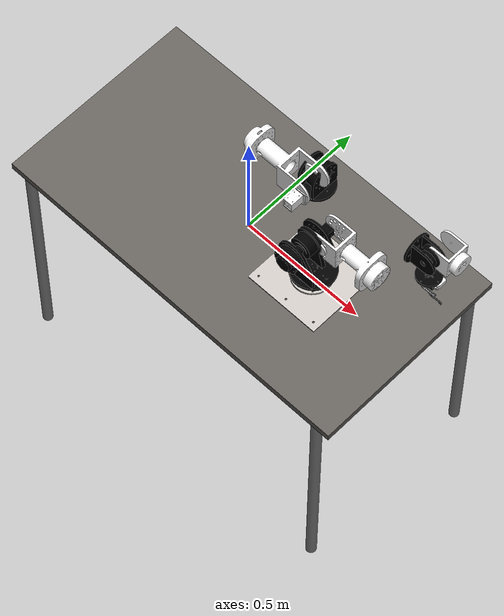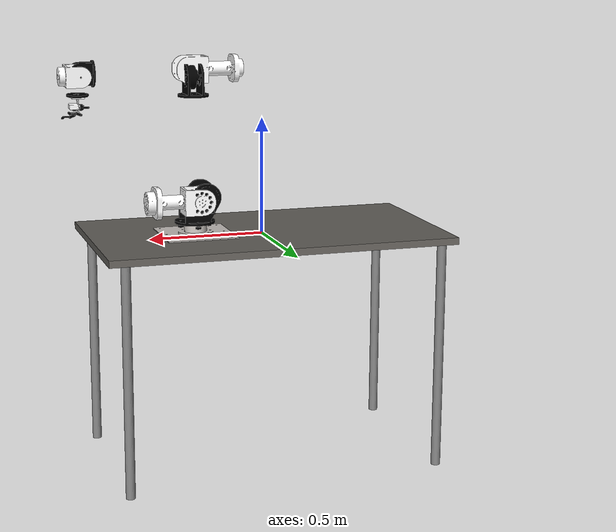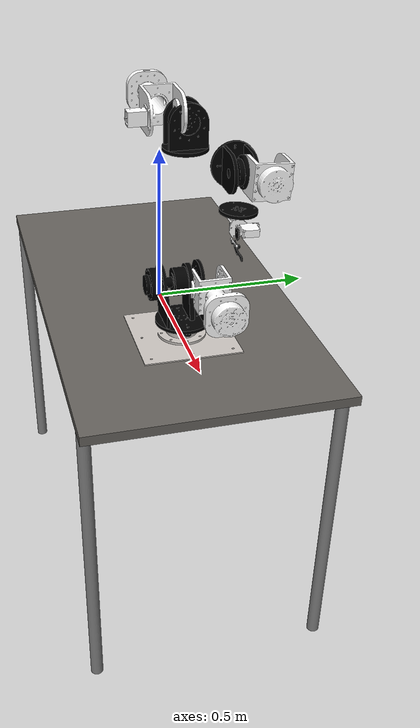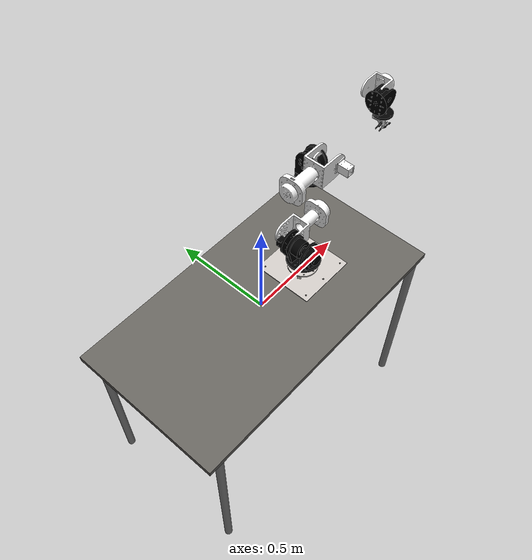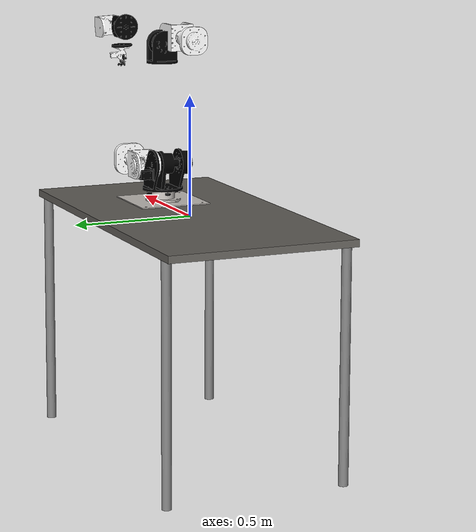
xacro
<?xml version="1.0" encoding="utf-8"?>

<robot xmlns:xacro="http://www.ros.org/wiki/xacro" name="daadbot">

  <!-- Load Simulated or Real Hardware Interfaces -->
  <xacro:arg name="is_sim" default="true"/>

  <xacro:arg name = "is_ignition" default="true"/>

  <xacro:include filename = "$(find daadbot_desc)/urdf/urdf_table_vel_sim/daadbot_gazebo.xacro"/>
  <xacro:include filename = "$(find daadbot_desc)/urdf/urdf_table_vel_sim/daadbot_ros2_control.xacro"/>
  <xacro:include filename = "$(find daadbot_desc)/urdf/urdf_table_vel_sim/table.xacro"/>

  <xacro:property name='PI' value='3.141592653589793'/>
  <xacro:property name='velocity' value='20.0'/>
  <xacro:property name='effort' value='150.0'/>

  <link name="world"/>

  <!-- Attach the Table to the World -->
  <joint
    name="sim_table_joint"
    type="fixed">
    <parent link="world"/>
    <child link="table_top"/>
    <origin xyz="0 0 0" rpy="0 0 0"/> <!-- Adjust height of table -->
  </joint>

  <!-- Attach Daadbot to the Table -->
  <joint
    name="sim_base_joint"
    type="fixed">
    <parent link="table_top"/>
    <child link="base_link"/>
    <origin xyz="0.3 0 0.015" rpy="0 0 0"/> <!-- Adjust position of the robot on the table -->
  </joint>

  <link
    name="base_link">
    <inertial>
      <origin
        xyz="0.00049737 0.00026123 0.0072038"
        rpy="0 0 0" />
      <mass
        value="6.9112" />
      <inertia
        ixx="0.046617"
        ixy="0.00010077"
        ixz="5.1488E-08"
        iyy="0.046482"
        iyz="-1.4461E-07"
        izz="0.092984" />
    </inertial>
    <visual>
      <origin
        xyz="0 0 0"
        rpy="0 0 0" />
      <geometry>
        <mesh
          filename="package://daadbot_desc/meshes/base_link.STL" />
      </geometry>
      <material
        name="">
        <color
          rgba="0.77647 0.75686 0.73725 1" />
      </material>
    </visual>
    <collision>
      <origin
        xyz="0 0 0"
        rpy="0 0 0" />
      <geometry>
        <mesh
          filename="package://daadbot_desc/meshes/base_link.STL" />
      </geometry>
    </collision>
  </link>
  <link
    name="Link_1">
    <inertial>
      <origin
        xyz="1.4551E-05 -0.0043711 0.069929"
        rpy="0 0 0" />
      <mass
        value="1.4053" />
      <inertia
        ixx="0.0017174"
        ixy="6.6784E-08"
        ixz="3.5551E-07"
        iyy="0.002626"
        iyz="6.0024E-06"
        izz="0.0017063" />
    </inertial>
    <visual>
      <origin
        xyz="0 0 0"
        rpy="0 0 0" />
      <geometry>
        <mesh
          filename="package://daadbot_desc/meshes/Link_1.STL" />
      </geometry>
      <material
        name="">
        <color
          rgba="0 0 0 1" />
      </material>
    </visual>
    <collision>
      <origin
        xyz="0 0 0"
        rpy="0 0 0" />
      <geometry>
        <mesh
          filename="package://daadbot_desc/meshes/Link_1.STL" />
      </geometry>
    </collision>
  </link>
  <joint
    name="sim_joint_1"
    type="revolute">
    <origin
      xyz="0 0 0.05"
      rpy="0 0 3.1416" />
    <parent
      link="base_link" />
    <child
      link="Link_1" />
    <axis
      xyz="0 0 -1" />
    <limit
      lower="-0.1"
      upper="3.145"
      effort="${effort}"
      velocity="${velocity}" />
  </joint>
  <link
    name="Link_2">
    <inertial>
      <origin
        xyz="-6.5548E-05 0.21409 0.034291"
        rpy="0 0 0" />
      <mass
        value="3.4329" />
      <inertia
        ixx="0.0091312"
        ixy="-2.4753E-06"
        ixz="8.4256E-07"
        iyy="0.0057112"
        iyz="5.0607E-06"
        izz="0.0099035" />
    </inertial>
    <visual>
      <origin
        xyz="0 0 0"
        rpy="0 0 0" />
      <geometry>
        <mesh
          filename="package://daadbot_desc/meshes/Link_2.STL" />
      </geometry>
      <material
        name="">
        <color
          rgba="1 1 1 1" />
      </material>
    </visual>
    <collision>
      <origin
        xyz="0 0 0"
        rpy="0 0 0" />
      <geometry>
        <mesh
          filename="package://daadbot_desc/meshes/Link_2.STL" />
      </geometry>
    </collision>
  </link>
  <joint
    name="sim_joint_2"
    type="revolute">
    <origin
      xyz="0 -0.02999999999948 0.107500000000395"
      rpy="1.5707963267949 0 -3.14159265358979" />
    <parent
      link="Link_1" />
    <child
      link="Link_2" />
    <axis
      xyz="0 0 -1" />
    <limit
      lower="-1.9199"
      upper="1.9199"
      effort="${effort}"
      velocity="${velocity}" />
  </joint>
  <link
    name="Link_3">
    <inertial>
      <origin
        xyz="-2.1655E-05 0.0044003 0.0672"
        rpy="0 0 0" />
      <mass
        value="1.3788" />
      <inertia
        ixx="0.0016215"
        ixy="-9.275E-08"
        ixz="2.8899E-07"
        iyy="0.0025027"
        iyz="-5.4475E-06"
        izz="0.0016785" />
    </inertial>
    <visual>
      <origin
        xyz="0 0 0"
        rpy="0 0 0" />
      <geometry>
        <mesh
          filename="package://daadbot_desc/meshes/Link_3.STL" />
      </geometry>
      <material
        name="">
        <color
          rgba="0 0 0 1" />
      </material>
    </visual>
    <collision>
      <origin
        xyz="0 0 0"
        rpy="0 0 0" />
      <geometry>
        <mesh
          filename="package://daadbot_desc/meshes/Link_3.STL" />
      </geometry>
    </collision>
  </link>
  <joint
    name="sim_joint_3"
    type="revolute">
    <origin
      xyz="0.000359289684152012 0.435033961918617 0.0294474762975983"
      rpy="1.57079632680726 0 3.14159265358979" />
    <parent
      link="Link_2" />
    <child
      link="Link_3" />
    <axis
      xyz="0 0 -1" />
    <limit
      lower="-0.1"
      upper="3.145"
      effort="${effort}"
      velocity="${velocity}" />
  </joint>
  <link
    name="Link_4">
    <inertial>
      <origin
        xyz="0.22054 0.00021752 -0.034312"
        rpy="0 0 0" />
      <mass
        value="3.5515" />
      <inertia
        ixx="0.0043885"
        ixy="2.6288E-06"
        ixz="-3.6827E-06"
        iyy="0.0083524"
        iyz="-3.8569E-06"
        izz="0.0091315" />
    </inertial>
    <visual>
      <origin
        xyz="0 0 0"
        rpy="0 0 0" />
      <geometry>
        <mesh
          filename="package://daadbot_desc/meshes/Link_4.STL" />
      </geometry>
      <material
        name="">
        <color
          rgba="1 1 1 1" />
      </material>
    </visual>
    <collision>
      <origin
        xyz="0 0 0"
        rpy="0 0 0" />
      <geometry>
        <mesh
          filename="package://daadbot_desc/meshes/Link_4.STL" />
      </geometry>
    </collision>
  </link>
  <joint
    name="sim_joint_4"
    type="revolute">
    <origin
      xyz="0 0.0299999999999995 0.102500000000001"
      rpy="1.5707963267949 0 3.14159265358979" />
    <parent
      link="Link_3" />
    <child
      link="Link_4" />
    <axis
      xyz="0 0 1" />
    <limit
      lower="-0.2618"
      upper="3.4907"
      effort="${effort}"
      velocity="${velocity}" />
  </joint>
  <link
    name="Link_5">
    <inertial>
      <origin
        xyz="0.0058409 -0.0002627 0.054755"
        rpy="0 0 0" />
      <mass
        value="1.4559" />
      <inertia
        ixx="0.0013388"
        ixy="-2.389E-05"
        ixz="-1.7038E-06"
        iyy="0.00084376"
        iyz="-2.3795E-07"
        izz="0.0009966" />
    </inertial>
    <visual>
      <origin
        xyz="0 0 0"
        rpy="0 0 0" />
      <geometry>
        <mesh
          filename="package://daadbot_desc/meshes/Link_5.STL" />
      </geometry>
      <material
        name="">
        <color
          rgba="0 0 0 1" />
      </material>
    </visual>
    <collision>
      <origin
        xyz="0 0 0"
        rpy="0 0 0" />
      <geometry>
        <mesh
          filename="package://daadbot_desc/meshes/Link_5.STL" />
      </geometry>
    </collision>
  </link>
  <joint
    name="sim_joint_5"
    type="revolute">
    <origin
      xyz="0.419299903678905 0 -0.0294999999999992"
      rpy="0 1.5707963267949 0" />
    <parent
      link="Link_4" />
    <child
      link="Link_5" />
    <axis
      xyz="0 0 -1" />
    <limit
      lower="-0.1"
      upper="3.145"
      effort="${effort}"
      velocity="${velocity}" />
  </joint>
  <link
    name="Link_6">
    <inertial>
      <origin
        xyz="0.00011175 -0.056394 -0.023876"
        rpy="0 0 0" />
      <mass
        value="1.4077" />
      <inertia
        ixx="0.00078211"
        ixy="-9.9306E-07"
        ixz="3.1036E-06"
        iyy="0.0010474"
        iyz="1.657E-06"
        izz="0.00099212" />
    </inertial>
    <visual>
      <origin
        xyz="0 0 0"
        rpy="0 0 0" />
      <geometry>
        <mesh
          filename="package://daadbot_desc/meshes/link_6.STL" />
      </geometry>
      <material
        name="">
        <color
          rgba="1 1 1 1" />
      </material>
    </visual>
    <collision>
      <origin
        xyz="0 0 0"
        rpy="0 0 0" />
      <geometry>
        <mesh
          filename="package://daadbot_desc/meshes/link_6.STL" />
      </geometry>
    </collision>
  </link>
  <joint
    name="sim_joint_6"
    type="revolute">
    <origin
      xyz="0.0239691789943203 -0.00121612576549357 0.0675000000000011"
      rpy="0.0506935943659278 1.5707963267949 0" />
    <parent
      link="Link_5" />
    <child
      link="Link_6" />
    <axis
      xyz="0 0 1" />
    <limit
      lower="-3.14"
      upper="3.14"
      effort="${effort}"
      velocity="${velocity}" />
  </joint>
  <link
    name="Link_7">
    <inertial>
      <origin
        xyz="8.2711E-06 3.9121E-07 0.0087604"
        rpy="0 0 0" />
      <mass
        value="0.18439" />
      <inertia
        ixx="8.0523E-05"
        ixy="-8.9234E-11"
        ixz="-4.712E-11"
        iyy="8.0525E-05"
        iyz="-2.2287E-12"
        izz="0.00015908" />
    </inertial>
    <visual>
      <origin
        xyz="0 0 0"
        rpy="0 0 0" />
      <geometry>
        <mesh
          filename="package://daadbot_desc/meshes/Link_7.STL" />
      </geometry>
      <material
        name="">
        <color
          rgba="0 0 0 1" />
      </material>
    </visual>
    <collision>
      <origin
        xyz="0 0 0"
        rpy="0 0 0" />
      <geometry>
        <mesh
          filename="package://daadbot_desc/meshes/Link_7.STL" />
      </geometry>
    </collision>
  </link>
  <joint
    name="sim_joint_7"
    type="revolute">
    <origin
      xyz="0 -0.0909999036788988 -0.0244999999999991"
      rpy="-1.5707963267949 0 3.14159265358979" />
    <parent
      link="Link_6" />
    <child
      link="Link_7" />
    <axis
      xyz="0 0 -1" />
    <limit
      lower="-0.1"
      upper="3.145"
      effort="${effort}"
      velocity="${velocity}" />
  </joint>
  <link
    name="endeffector">
    <inertial>
      <origin
        xyz="-0.0198 -0.019334 0.047383"
        rpy="0 0 0" />
      <mass
        value="0.10291" />
      <inertia
        ixx="1.41E-05"
        ixy="-4.3343E-07"
        ixz="-9.812E-08"
        iyy="2.056E-05"
        iyz="-4.6453E-09"
        izz="2.527E-05" />
    </inertial>
    <visual>
      <origin
        xyz="0 0 0"
        rpy="0 0 0" />
      <geometry>
        <mesh
          filename="package://daadbot_desc/meshes/endeffector.STL" />
      </geometry>
      <material
        name="">
        <color
          rgba="1 1 1 1" />
      </material>
    </visual>
    <collision>
      <origin
        xyz="0 0 0"
        rpy="0 0 0" />
      <geometry>
        <mesh
          filename="package://daadbot_desc/meshes/endeffector.STL" />
      </geometry>
    </collision>
  </link>
  <joint
    name="sim_endeffector_joint"
    type="fixed">
    <origin
      xyz="0 0 0"
      rpy="0 0 0" />
    <parent
      link="Link_7" />
    <child
      link="endeffector" />
    <axis
      xyz="0 0 0" />
  </joint>
  <link
    name="gear1">
    <inertial>
      <origin
        xyz="0.00049542 -0.0057094 0.0018167"
        rpy="0 0 0" />
      <mass
        value="0.0053" />
      <inertia
        ixx="7.5591E-07"
        ixy="-2.1833E-08"
        ixz="-6.9871E-09"
        iyy="1.8107E-07"
        iyz="3.6804E-08"
        izz="9.2464E-07" />
    </inertial>
    <visual>
      <origin
        xyz="0 0 0"
        rpy="0 0 0" />
      <geometry>
        <mesh
          filename="package://daadbot_desc/meshes/gear1.STL" />
      </geometry>
      <material
        name="">
        <color
          rgba="0 0 0 1" />
      </material>
    </visual>
    <collision>
      <origin
        xyz="0 0 0"
        rpy="0 0 0" />
      <geometry>
        <mesh
          filename="package://daadbot_desc/meshes/gear1.STL" />
      </geometry>
    </collision>
  </link>
  <joint
    name="sim_gear1_joint"
    type="revolute">
    <origin
      xyz="-0.0136030394768413 0.00185938617586617 0.0481789689084899"
      rpy="-1.52010273242897 0 0" />
    <parent
      link="endeffector" />
    <child
      link="gear1" />
    <axis
      xyz="-0.0472460759822869 0.0506152984712181 0.997600070100712" />
    <limit
      lower="-0.9"
      upper="0"
      effort="${effort}"
      velocity="${velocity}" />
  </joint>
  <link
    name="base_claw_link1">
    <inertial>
      <origin
        xyz="-1.058E-05 -0.015556 -0.00071484"
        rpy="0 0 0" />
      <mass
        value="0.0011042" />
      <inertia
        ixx="1.5467E-07"
        ixy="-7.9881E-10"
        ixz="-2.9739E-11"
        iyy="3.5247E-09"
        iyz="7.7059E-09"
        izz="1.5576E-07" />
    </inertial>
    <visual>
      <origin
        xyz="0 0 0"
        rpy="0 0 0" />
      <geometry>
        <mesh
          filename="package://daadbot_desc/meshes/base_claw_link1.STL" />
      </geometry>
      <material
        name="">
        <color
          rgba="1 1 1 1" />
      </material>
    </visual>
    <collision>
      <origin
        xyz="0 0 0"
        rpy="0 0 0" />
      <geometry>
        <mesh
          filename="package://daadbot_desc/meshes/base_claw_link1.STL" />
      </geometry>
    </collision>
  </link>
  <joint
    name="sim_base_claw_joint1_mimic"
    type="fixed">
    <parent
      link="Link_7" />
    <child
      link="dummy_base_claw_joint1_mimic" />
  </joint>
  <link name="dummy_base_claw_joint1_mimic"/>
  <joint
    name="sim_base_claw_joint1"
    type="revolute">
    <origin
      xyz="-0.00548036760308535 0.0047463745042049 0.0685789689085226"
      rpy="-1.52010273242897 0 0" />
    <parent
      link="Link_7" />
    <child
      link="base_claw_link1" />
    <axis
      xyz="0.0472460759822863 -0.0506152984712078 -0.997600070100712" />
    <limit
      lower="0"
      upper="0.9"
      effort="${effort}"
      velocity="${velocity}" />
    <mimic
      joint="gear1_joint"
      multiplier="-1"
      offset="0" />
  </joint>
  <link
    name="gear1_claw">
    <inertial>
      <origin
        xyz="0.0054214 -0.023631 -0.0030551"
        rpy="0 0 0" />
      <mass
        value="0.0039374" />
      <inertia
        ixx="1.2119E-06"
        ixy="1.6298E-07"
        ixz="-1.0864E-08"
        iyy="6.47E-08"
        iyz="6.8703E-08"
        izz="1.2627E-06" />
    </inertial>
    <visual>
      <origin
        xyz="0 0 0"
        rpy="0 0 0" />
      <geometry>
        <mesh
          filename="package://daadbot_desc/meshes/gear1_claw.STL" />
      </geometry>
      <material
        name="">
        <color
          rgba="0 0 0 1" />
      </material>
    </visual>
    <collision>
      <origin
        xyz="0 0 0"
        rpy="0 0 0" />
      <geometry>
        <mesh
          filename="package://daadbot_desc/meshes/gear1_claw.STL" />
      </geometry>
    </collision>
  </link>
  <joint
    name="sim_claw_joint1_mimic"
    type="fixed">
    <parent
      link="gear1" />
    <child
      link="dummy_claw_joint1_mimic" />
  </joint>
  <link name="dummy_claw_joint1_mimic"/>
  <joint
    name="sim_claw_joint1"
    type="revolute">
    <origin
      xyz="-0.000267699277291311 -0.0308336350288896 0.00405774420117622"
      rpy="0 0 0" />
    <parent
      link="gear1" />
    <child
      link="gear1_claw" />
    <axis
      xyz="-0.0472460759822531 0.0506152984712519 0.997600070100712" />
    <limit
      lower="0"
      upper="0.9"
      effort="${effort}"
      velocity="${velocity}" />
    <mimic
      joint="base_claw_joint1"
      multiplier="1"
      offset="0" />
  </joint>
  <link
    name="gear2_link">
    <inertial>
      <origin
        xyz="0.00014723 -0.0053735 -0.001224"
        rpy="0 0 0" />
      <mass
        value="0.0057636" />
      <inertia
        ixx="8.0509E-07"
        ixy="7.9758E-09"
        ixz="-1.0182E-08"
        iyy="2.1764E-07"
        iyz="4.0658E-08"
        izz="1.009E-06" />
    </inertial>
    <visual>
      <origin
        xyz="0 0 0"
        rpy="0 0 0" />
      <geometry>
        <mesh
          filename="package://daadbot_desc/meshes/gear2_link.STL" />
      </geometry>
      <material
        name="">
        <color
          rgba="0 0 0 1" />
      </material>
    </visual>
    <collision>
      <origin
        xyz="0 0 0"
        rpy="0 0 0" />
      <geometry>
        <mesh
          filename="package://daadbot_desc/meshes/gear2_link.STL" />
      </geometry>
    </collision>
  </link>
  <joint
    name="sim_gear2_joint_mimic"
    type="fixed">
    <parent
      link="endeffector" />
    <child
      link="dummy_gear2_joint_mimic" />
  </joint>
  <link name="dummy_gear2_joint_mimic"/>
  <joint
    name="sim_gear2_joint"
    type="revolute">
    <origin
      xyz="0.013248693908315 0.0056322384288611 0.0481789689082828"
      rpy="-1.52010273242897 0 0" />
    <parent
      link="endeffector" />
    <child
      link="gear2_link" />
    <axis
      xyz="-0.0472460759822667 0.0506152984712492 0.997600070100711" />
    <limit
      lower="0"
      upper="0.9"
      effort="${effort}"
      velocity="${velocity}" />
    <mimic
      joint="gear1_joint"
      multiplier="-1"
      offset="0" />
  </joint>
  <link
    name="base_claw_link2">
    <inertial>
      <origin
        xyz="0.00030048 -0.015554 -0.00070023"
        rpy="0 0 0" />
      <mass
        value="0.0011042" />
      <inertia
        ixx="1.5464E-07"
        ixy="2.238E-09"
        ixz="-1.8519E-10"
        iyy="3.5683E-09"
        iyz="7.8475E-09"
        izz="1.5574E-07" />
    </inertial>
    <visual>
      <origin
        xyz="0 0 0"
        rpy="0 0 0" />
      <geometry>
        <mesh
          filename="package://daadbot_desc/meshes/base_claw_link2.STL" />
      </geometry>
      <material
        name="">
        <color
          rgba="1 1 1 1" />
      </material>
    </visual>
    <collision>
      <origin
        xyz="0 0 0"
        rpy="0 0 0" />
      <geometry>
        <mesh
          filename="package://daadbot_desc/meshes/base_claw_link2.STL" />
      </geometry>
    </collision>
  </link>
  <joint
    name="sim_base_claw_joint2_mimic"
    type="fixed">
    <parent
      link="Link_7" />
    <child
      link="dummy_base_claw_joint2_mimic" />
  </joint>
  <link name="dummy_base_claw_joint2_mimic"/>
  <joint
    name="sim_base_claw_joint2"
    type="revolute">
    <origin
      xyz="0.00500790684313079 0.00524245830200445 0.0685789689082188"
      rpy="-1.52010273242897 0 0" />
    <parent
      link="Link_7" />
    <child
      link="base_claw_link2" />
    <axis
      xyz="-0.0472460759822792 0.0506152984712578 0.99760007010071" />
    <limit
      lower="0"
      upper="0.9"
      effort="${effort}"
      velocity="${velocity}" />
    <mimic
      joint="gear1_joint"
      multiplier="-1"
      offset="0" />
  </joint>
  <link
    name="gear2_claw">
    <inertial>
      <origin
        xyz="-0.0049965 -0.023656 -0.0035472"
        rpy="0 0 0" />
      <mass
        value="0.0039374" />
      <inertia
        ixx="1.2119E-06"
        ixy="-1.6326E-07"
        ixz="5.6881E-09"
        iyy="6.3141E-08"
        iyz="5.3332E-08"
        izz="1.2642E-06" />
    </inertial>
    <visual>
      <origin
        xyz="0 0 0"
        rpy="0 0 0" />
      <geometry>
        <mesh
          filename="package://daadbot_desc/meshes/gear2_claw.STL" />
      </geometry>
      <material
        name="">
        <color
          rgba="0 0 0 1" />
      </material>
    </visual>
    <collision>
      <origin
        xyz="0 0 0"
        rpy="0 0 0" />
      <geometry>
        <mesh
          filename="package://daadbot_desc/meshes/gear2_claw.STL" />
      </geometry>
    </collision>
  </link>
  <joint
    name="sim_claw_joint2_mimic"
    type="fixed">
    <parent
      link="gear2_link" />
    <child
      link="dummy_claw_joint2_mimic" />
  </joint>
  <link name="dummy_claw_joint2_mimic"/>
  <joint
    name="sim_claw_joint2"
    type="revolute">
    <origin
      xyz="0.000446202525255179 -0.0309558921236726 0.00159174310957538"
      rpy="0 0 0" />
    <parent
      link="gear2_link" />
    <child
      link="gear2_claw" />
    <axis
      xyz="-0.0472460759823001 0.050615298471215 0.997600070100712" />
    <limit
      lower="-0.9"
      upper="0"
      effort="${effort}"
      velocity="${velocity}" />
    <mimic
      joint="base_claw_joint2"
      multiplier="-1"
      offset="0" />
  </joint>

</robot>

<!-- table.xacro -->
<robot name="table" xmlns:xacro="http://www.ros.org/wiki/xacro">

  <!-- Table Top -->
  <link name="table_top">
    <visual>
      <origin xyz="0 0 0.0"/>
      <geometry>
        <box size="1.5 0.8 0.03"/>
      </geometry>
      <material name="">
        <color rgba="0.388 0.376 0.357 1"/>
      </material>
    </visual>
    <collision>
      <origin xyz="0 0 1.0"/>
      <geometry>
        <box size="1.5 0.8 0.03"/>
      </geometry>
    </collision>
    <inertial>
      <origin xyz="0 0 1.0"/>
      <mass value="5.0"/>
      <inertia ixx="0.1" ixy="0" ixz="0" iyy="0.1" iyz="0" izz="0.1"/>
    </inertial>
  </link>

  <!-- Table Legs -->
  <xacro:macro name="table_leg" params="leg_name x y">
    <link name="${leg_name}">
      <visual>
        <origin xyz="${x} ${y} 0.0"/>
        <geometry>
          <cylinder radius="0.02" length="1"/>
        </geometry>
        <material name="">
          <color rgba="0.5 0.5 0.5 1"/>
        </material>
      </visual>
      <collision>
        <origin xyz="${x} ${y} 0.5"/>
        <geometry>
          <cylinder radius="0.02" length="1"/>
        </geometry>
      </collision>
      <inertial>
        <origin xyz="${x} ${y} 0.5"/>
        <mass value="1.0"/>
        <inertia ixx="0.01" ixy="0" ixz="0" iyy="0.01" iyz="0" izz="0.01"/>
      </inertial>
    </link>

    <joint name="${leg_name}_joint" type="fixed">
      <parent link="table_top"/>
      <child link="${leg_name}"/>
      <origin xyz="0 0 -0.5"/>
    </joint>
  </xacro:macro>

  <!-- Four Legs -->
  <xacro:table_leg leg_name="front_left_leg" x="0.68" y="0.38"/>
  <xacro:table_leg leg_name="front_right_leg" x="0.68" y="-0.38"/>
  <xacro:table_leg leg_name="back_left_leg" x="-0.68" y="0.38"/>
  <xacro:table_leg leg_name="back_right_leg" x="-0.68" y="-0.38"/>

</robot>
